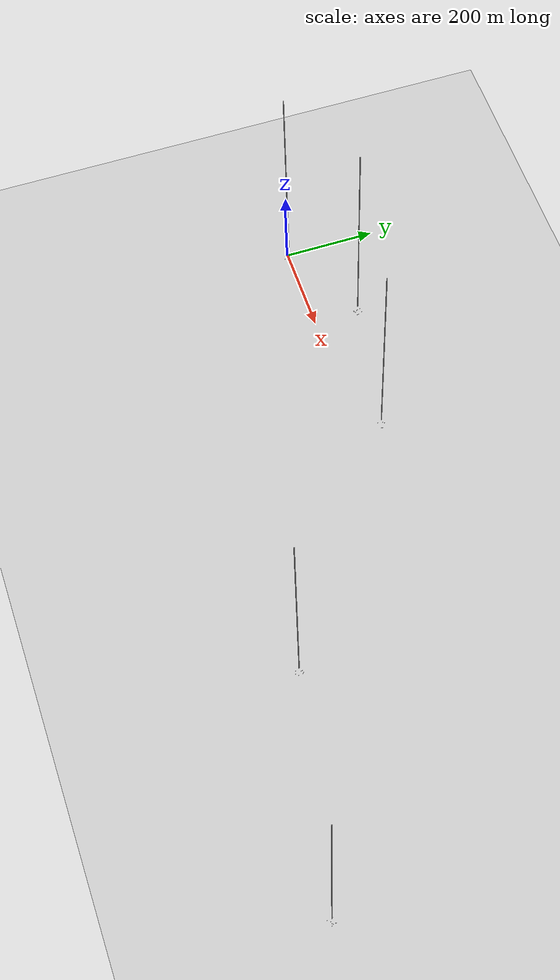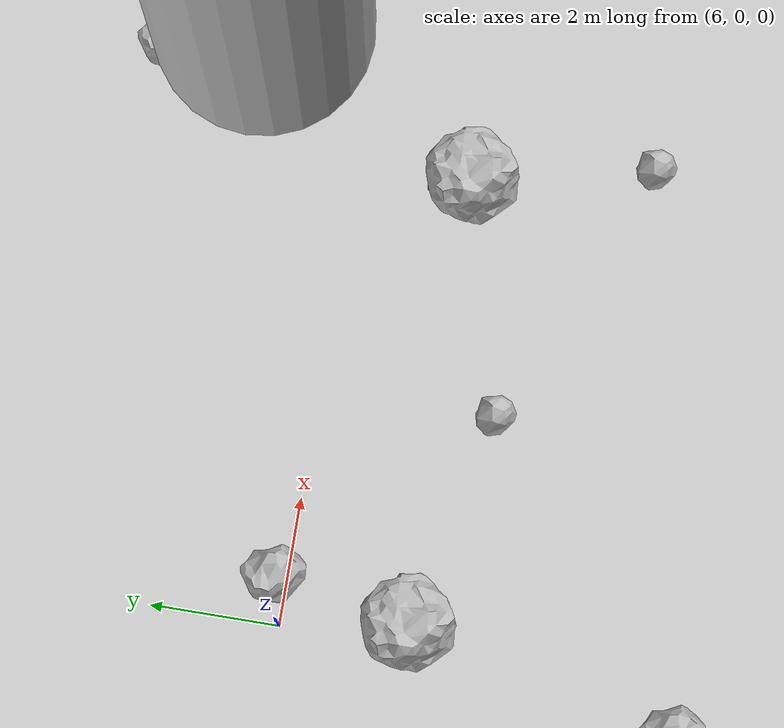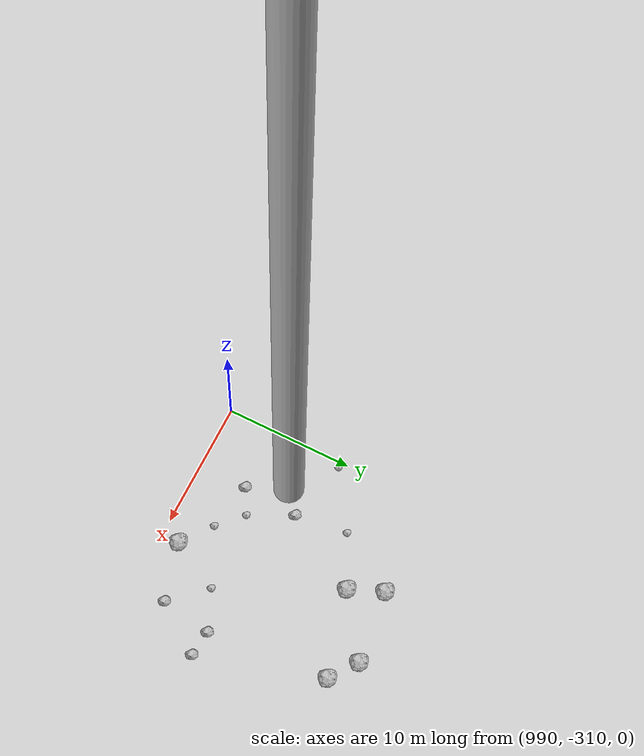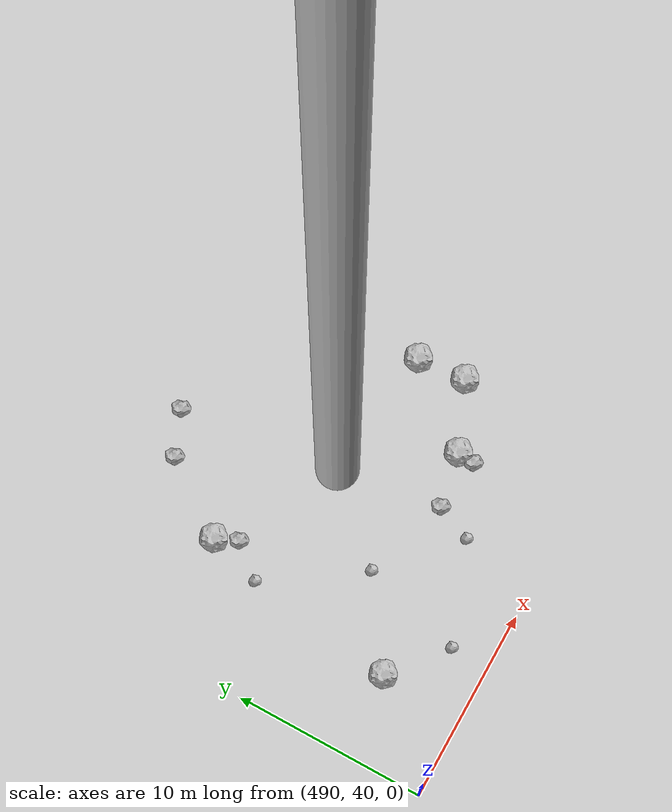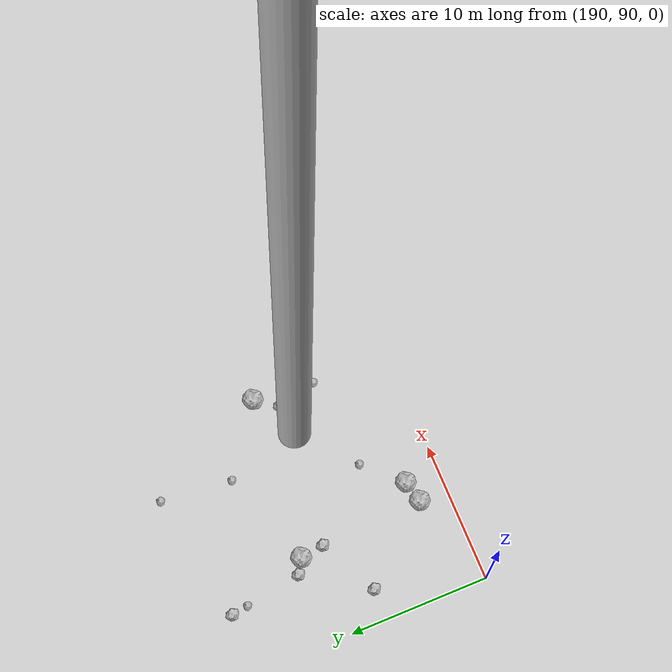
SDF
<?xml version="1.0" ?>
<sdf version="1.6">
  <world name="default">

    <include>
      <uri>model://custom_ground</uri>
    </include>

    <include>
      <uri>model://sun</uri>
    </include>

    <spherical_coordinates>
      <surface_model>EARTH_WGS84</surface_model>
      <latitude_deg>38.161479</latitude_deg>
      <longitude_deg>-122.454630</longitude_deg>
      <elevation>488.0</elevation>
      <heading_deg>90</heading_deg>
    </spherical_coordinates>

    <model name="rock1_0_0">
      <include>
        <uri>model://rock1</uri>
        <pose>6.378954680673143 -1.9242016777809479 0.5 0 0 0</pose>
      </include>
    </model>
    <model name="rock1_0_1">
      <include>
        <uri>model://rock1</uri>
        <pose>15.589041659439957 2.794380600290074 0.5 0 0 0</pose>
      </include>
    </model>
    <model name="rock1_0_2">
      <include>
        <uri>model://rock1</uri>
        <pose>13.354420805541631 -1.7660493267336008 0.5 0 0 0</pose>
      </include>
    </model>
    <model name="rock1_0_3">
      <include>
        <uri>model://rock1</uri>
        <pose>17.32283652993798 -1.3338000745133165 0.5 0 0 0</pose>
      </include>
    </model>
    <model name="rock1_0_4">
      <include>
        <uri>model://rock1</uri>
        <pose>6.980403882014445 8.118740719220241 0.5 0 0 0</pose>
      </include>
    </model>
    <model name="rock2_0_0">
      <include>
        <uri>model://rock2</uri>
        <pose>5.371072108476705 -6.121147035690672 0.3 0 0 0</pose>
      </include>
    </model>
    <model name="rock2_0_1">
      <include>
        <uri>model://rock2</uri>
        <pose>8.134404786920921 -8.991303453626136 0.3 0 0 0</pose>
      </include>
    </model>
    <model name="rock2_0_2">
      <include>
        <uri>model://rock2</uri>
        <pose>6.776627264823107 0.2251390261857189 0.3 0 0 0</pose>
      </include>
    </model>
    <model name="rock2_0_3">
      <include>
        <uri>model://rock2</uri>
        <pose>14.738135830108003 3.2366891755927245 0.3 0 0 0</pose>
      </include>
    </model>
    <model name="rock2_0_4">
      <include>
        <uri>model://rock2</uri>
        <pose>4.139170111905961 -6.455221484281671 0.3 0 0 0</pose>
      </include>
    </model>
    <model name="rock3_0_0">
      <include>
        <uri>model://rock3</uri>
        <pose>13.938119356794417 -4.581868992645754 0.2 0 0 0</pose>
      </include>
    </model>
    <model name="rock3_0_1">
      <include>
        <uri>model://rock3</uri>
        <pose>13.242922203519228 -1.399643811831801 0.2 0 0 0</pose>
      </include>
    </model>
    <model name="rock3_0_2">
      <include>
        <uri>model://rock3</uri>
        <pose>9.721767039546448 -2.735016011212248 0.2 0 0 0</pose>
      </include>
    </model>
    <model name="rock3_0_3">
      <include>
        <uri>model://rock3</uri>
        <pose>17.335190420348265 3.0132792781147195 0.2 0 0 0</pose>
      </include>
    </model>
    <model name="rock3_0_4">
      <include>
        <uri>model://rock3</uri>
        <pose>8.744611565919122 9.26963979300006 0.2 0 0 0</pose>
      </include>
    </model>
    <model name="rock1_1_0">
      <include>
        <uri>model://rock1</uri>
        <pose>196.18336221533622 101.19499239892446 0.5 0 0 0</pose>
      </include>
    </model>
    <model name="rock1_1_1">
      <include>
        <uri>model://rock1</uri>
        <pose>209.2479640414771 96.73098953637452 0.5 0 0 0</pose>
      </include>
    </model>
    <model name="rock1_1_2">
      <include>
        <uri>model://rock1</uri>
        <pose>196.70986054931507 92.10407982899676 0.5 0 0 0</pose>
      </include>
    </model>
    <model name="rock1_1_3">
      <include>
        <uri>model://rock1</uri>
        <pose>198.27617774538254 92.47825165707162 0.5 0 0 0</pose>
      </include>
    </model>
    <model name="rock1_1_4">
      <include>
        <uri>model://rock1</uri>
        <pose>207.82520161229064 100.00122579503167 0.5 0 0 0</pose>
      </include>
    </model>
    <model name="rock2_1_0">
      <include>
        <uri>model://rock2</uri>
        <pose>194.34862444688048 107.03898124360596 0.3 0 0 0</pose>
      </include>
    </model>
    <model name="rock2_1_1">
      <include>
        <uri>model://rock2</uri>
        <pose>206.71202858405252 98.40794780541145 0.3 0 0 0</pose>
      </include>
    </model>
    <model name="rock2_1_2">
      <include>
        <uri>model://rock2</uri>
        <pose>196.4097300630723 99.48805874835982 0.3 0 0 0</pose>
      </include>
    </model>
    <model name="rock2_1_3">
      <include>
        <uri>model://rock2</uri>
        <pose>192.2381955743395 97.41539516327832 0.3 0 0 0</pose>
      </include>
    </model>
    <model name="rock2_1_4">
      <include>
        <uri>model://rock2</uri>
        <pose>195.1655385184062 101.81661137601024 0.3 0 0 0</pose>
      </include>
    </model>
    <model name="rock3_1_0">
      <include>
        <uri>model://rock3</uri>
        <pose>203.5524477987249 108.61341022265128 0.2 0 0 0</pose>
      </include>
    </model>
    <model name="rock3_1_1">
      <include>
        <uri>model://rock3</uri>
        <pose>207.35013920670752 95.57030839043348 0.2 0 0 0</pose>
      </include>
    </model>
    <model name="rock3_1_2">
      <include>
        <uri>model://rock3</uri>
        <pose>194.50119460270042 105.82472127814543 0.2 0 0 0</pose>
      </include>
    </model>
    <model name="rock3_1_3">
      <include>
        <uri>model://rock3</uri>
        <pose>200.6733389937695 94.89106653750768 0.2 0 0 0</pose>
      </include>
    </model>
    <model name="rock3_1_4">
      <include>
        <uri>model://rock3</uri>
        <pose>203.0355756056484 103.50141173437655 0.2 0 0 0</pose>
      </include>
    </model>
    <model name="rock1_2_0">
      <include>
        <uri>model://rock1</uri>
        <pose>494.4018904840111 44.38317528238919 0.5 0 0 0</pose>
      </include>
    </model>
    <model name="rock1_2_1">
      <include>
        <uri>model://rock1</uri>
        <pose>505.8212190526899 46.37876016652588 0.5 0 0 0</pose>
      </include>
    </model>
    <model name="rock1_2_2">
      <include>
        <uri>model://rock1</uri>
        <pose>509.1903387629694 47.836913055460045 0.5 0 0 0</pose>
      </include>
    </model>
    <model name="rock1_2_3">
      <include>
        <uri>model://rock1</uri>
        <pose>496.30894065907216 54.91447733955411 0.5 0 0 0</pose>
      </include>
    </model>
    <model name="rock1_2_4">
      <include>
        <uri>model://rock1</uri>
        <pose>509.0090970044327 50.35723480190369 0.5 0 0 0</pose>
      </include>
    </model>
    <model name="rock2_2_0">
      <include>
        <uri>model://rock2</uri>
        <pose>505.7212744749377 45.51430022748227 0.3 0 0 0</pose>
      </include>
    </model>
    <model name="rock2_2_1">
      <include>
        <uri>model://rock2</uri>
        <pose>503.03394911148587 45.87807207148879 0.3 0 0 0</pose>
      </include>
    </model>
    <model name="rock2_2_2">
      <include>
        <uri>model://rock2</uri>
        <pose>501.1614485872178 59.46813877274989 0.3 0 0 0</pose>
      </include>
    </model>
    <model name="rock2_2_3">
      <include>
        <uri>model://rock2</uri>
        <pose>496.78611863288376 53.79521649677086 0.3 0 0 0</pose>
      </include>
    </model>
    <model name="rock2_2_4">
      <include>
        <uri>model://rock2</uri>
        <pose>498.91866459745233 58.592157329392045 0.3 0 0 0</pose>
      </include>
    </model>
    <model name="rock3_2_0">
      <include>
        <uri>model://rock3</uri>
        <pose>505.08852640812324 53.74514524228472 0.2 0 0 0</pose>
      </include>
    </model>
    <model name="rock3_2_1">
      <include>
        <uri>model://rock3</uri>
        <pose>495.38975476816734 52.11098504581135 0.2 0 0 0</pose>
      </include>
    </model>
    <model name="rock3_2_2">
      <include>
        <uri>model://rock3</uri>
        <pose>498.5990294490755 47.325097524820684 0.2 0 0 0</pose>
      </include>
    </model>
    <model name="rock3_2_3">
      <include>
        <uri>model://rock3</uri>
        <pose>502.2260493930436 43.97081327185897 0.2 0 0 0</pose>
      </include>
    </model>
    <model name="rock3_2_4">
      <include>
        <uri>model://rock3</uri>
        <pose>497.1418740614531 42.041874412822494 0.2 0 0 0</pose>
      </include>
    </model>
    <model name="rock1_3_0">
      <include>
        <uri>model://rock1</uri>
        <pose>1005.6546784650743 -293.99234599181545 0.5 0 0 0</pose>
      </include>
    </model>
    <model name="rock1_3_1">
      <include>
        <uri>model://rock1</uri>
        <pose>1001.3503927966761 -308.5841307185093 0.5 0 0 0</pose>
      </include>
    </model>
    <model name="rock1_3_2">
      <include>
        <uri>model://rock1</uri>
        <pose>1003.5441078188838 -292.45967133096616 0.5 0 0 0</pose>
      </include>
    </model>
    <model name="rock1_3_3">
      <include>
        <uri>model://rock1</uri>
        <pose>998.955424382743 -295.7178321265662 0.5 0 0 0</pose>
      </include>
    </model>
    <model name="rock1_3_4">
      <include>
        <uri>model://rock1</uri>
        <pose>997.835986039782 -293.0989882252193 0.5 0 0 0</pose>
      </include>
    </model>
    <model name="rock2_3_0">
      <include>
        <uri>model://rock2</uri>
        <pose>995.0947036023367 -306.1249958814307 0.3 0 0 0</pose>
      </include>
    </model>
    <model name="rock2_3_1">
      <include>
        <uri>model://rock2</uri>
        <pose>1005.7870418112253 -307.3608235187877 0.3 0 0 0</pose>
      </include>
    </model>
    <model name="rock2_3_2">
      <include>
        <uri>model://rock2</uri>
        <pose>1008.4768364284014 -303.64500690649874 0.3 0 0 0</pose>
      </include>
    </model>
    <model name="rock2_3_3">
      <include>
        <uri>model://rock2</uri>
        <pose>1006.4491036253986 -303.42161292424623 0.3 0 0 0</pose>
      </include>
    </model>
    <model name="rock2_3_4">
      <include>
        <uri>model://rock2</uri>
        <pose>995.3959738897877 -301.7469278732909 0.3 0 0 0</pose>
      </include>
    </model>
    <model name="rock3_3_0">
      <include>
        <uri>model://rock3</uri>
        <pose>1003.3086474862332 -304.7697821297873 0.2 0 0 0</pose>
      </include>
    </model>
    <model name="rock3_3_1">
      <include>
        <uri>model://rock3</uri>
        <pose>990.4447080143935 -300.57534258485146 0.2 0 0 0</pose>
      </include>
    </model>
    <model name="rock3_3_2">
      <include>
        <uri>model://rock3</uri>
        <pose>998.8778790746134 -306.8387081365237 0.2 0 0 0</pose>
      </include>
    </model>
    <model name="rock3_3_3">
      <include>
        <uri>model://rock3</uri>
        <pose>997.0245105222215 -305.07443813757726 0.2 0 0 0</pose>
      </include>
    </model>
    <model name="rock3_3_4">
      <include>
        <uri>model://rock3</uri>
        <pose>994.8634777142684 -297.67113216667855 0.2 0 0 0</pose>
      </include>
    </model>
    <model name="rock1_4_0">
      <include>
        <uri>model://rock1</uri>
        <pose>1505.4599481128698 -394.08481981076307 0.5 0 0 0</pose>
      </include>
    </model>
    <model name="rock1_4_1">
      <include>
        <uri>model://rock1</uri>
        <pose>1508.7621295087113 -402.86436680146244 0.5 0 0 0</pose>
      </include>
    </model>
    <model name="rock1_4_2">
      <include>
        <uri>model://rock1</uri>
        <pose>1503.642855183475 -401.77424197758273 0.5 0 0 0</pose>
      </include>
    </model>
    <model name="rock1_4_3">
      <include>
        <uri>model://rock1</uri>
        <pose>1493.67316144122 -396.3529529245179 0.5 0 0 0</pose>
      </include>
    </model>
    <model name="rock1_4_4">
      <include>
        <uri>model://rock1</uri>
        <pose>1495.4012919893987 -408.1500019239401 0.5 0 0 0</pose>
      </include>
    </model>
    <model name="rock2_4_0">
      <include>
        <uri>model://rock2</uri>
        <pose>1495.869677226357 -394.08273658909457 0.3 0 0 0</pose>
      </include>
    </model>
    <model name="rock2_4_1">
      <include>
        <uri>model://rock2</uri>
        <pose>1499.721426498809 -402.64642055796844 0.3 0 0 0</pose>
      </include>
    </model>
    <model name="rock2_4_2">
      <include>
        <uri>model://rock2</uri>
        <pose>1499.518689182622 -395.34795372507443 0.3 0 0 0</pose>
      </include>
    </model>
    <model name="rock2_4_3">
      <include>
        <uri>model://rock2</uri>
        <pose>1505.9901262442265 -399.7744767242807 0.3 0 0 0</pose>
      </include>
    </model>
    <model name="rock2_4_4">
      <include>
        <uri>model://rock2</uri>
        <pose>1506.4605854824995 -398.03153124295477 0.3 0 0 0</pose>
      </include>
    </model>
    <model name="rock3_4_0">
      <include>
        <uri>model://rock3</uri>
        <pose>1506.5053218312842 -393.3987129727406 0.2 0 0 0</pose>
      </include>
    </model>
    <model name="rock3_4_1">
      <include>
        <uri>model://rock3</uri>
        <pose>1495.439604502827 -408.70584229560836 0.2 0 0 0</pose>
      </include>
    </model>
    <model name="rock3_4_2">
      <include>
        <uri>model://rock3</uri>
        <pose>1491.2237032693724 -401.10051292272294 0.2 0 0 0</pose>
      </include>
    </model>
    <model name="rock3_4_3">
      <include>
        <uri>model://rock3</uri>
        <pose>1496.615066917056 -396.84017788648936 0.2 0 0 0</pose>
      </include>
    </model>
    <model name="rock3_4_4">
      <include>
        <uri>model://rock3</uri>
        <pose>1494.7129953268175 -392.9762072453152 0.2 0 0 0</pose>
      </include>
    </model>

    <model name="cylinder_1">
      <static>true</static>
      <link name="link">
        <visual name="visual">
          <geometry>
            <cylinder>
              <radius>1</radius>
              <length>500</length>
            </cylinder>
          </geometry>
        </visual>
      </link>
      <pose>10 0 270 0 0 0</pose>
    </model>

    <model name="cylinder_2">
      <static>true</static>
      <link name="link">
        <visual name="visual">
          <geometry>
            <cylinder>
              <radius>1</radius>
              <length>500</length>
            </cylinder>
          </geometry>
        </visual>
      </link>
      <pose>200 100 270 0 0 0</pose>
    </model>

    <model name="cylinder_3">
      <static>true</static>
      <link name="link">
        <visual name="visual">
          <geometry>
            <cylinder>
              <radius>1</radius>
              <length>500</length>
            </cylinder>
          </geometry>
        </visual>
      </link>
      <pose>500 50 270 0 0 0</pose>
    </model>

    <model name="cylinder_4">
      <static>true</static>
      <link name="link">
        <visual name="visual">
          <geometry>
            <cylinder>
              <radius>1</radius>
              <length>500</length>
            </cylinder>
          </geometry>
        </visual>
      </link>
      <pose>1000 -300 270 0 0 0</pose>
    </model>

    <model name="cylinder_5">
      <static>true</static>
      <link name="link">
        <visual name="visual">
          <geometry>
            <cylinder>
              <radius>1</radius>
              <length>500</length>
            </cylinder>
          </geometry>
        </visual>
      </link>
      <pose>1500 -400 270 0 0 0</pose>
    </model>

  </world>
</sdf>

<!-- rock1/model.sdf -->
<sdf version="1.6">
  <model name="rock1">
    <static>true</static> <!-- Set to true if the model should not move -->
    <pose>0 0 0 0 0 0</pose>

    <!--z offset is 0.5 for full scale-->

    <link name="link">
      <collision name="rock1_collision">
        <geometry>
          <mesh>
            <uri>model://meshes/rock1.dae</uri>
          </mesh>
        </geometry>
      </collision>
      <visual name="rock1_visual">
        <geometry>
          <mesh>
            <uri>model://meshes/rock1.dae</uri>
          </mesh>
        </geometry>
        <material>
          <script>
            <uri>model://materials/scripts/sand_pebbles.material</uri>
            <name>custom_ground/Image</name>
          </script>
        </material>
      </visual>
    </link>
  </model>
</sdf>

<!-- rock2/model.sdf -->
<sdf version="1.6">
  <model name="rock2">
    <static>true</static> <!-- Set to true if the model should not move -->
    <pose>0 0 0 0 0 0</pose>

    <!--z offset is 0.3 for full scale-->

    <link name="link">
      <collision name="rock2_collision">
        <geometry>
          <mesh>
            <uri>model://meshes/rock2.dae</uri>
          </mesh>
        </geometry>
      </collision>
      <visual name="rock2_visual">
        <geometry>
          <mesh>
            <uri>model://meshes/rock2.dae</uri>
          </mesh>
        </geometry>
        <material>
          <script>
            <uri>model://materials/scripts/sand_pebbles.material</uri>
            <name>custom_ground/Image</name>
          </script>
        </material>
      </visual>
    </link>
  </model>
</sdf>

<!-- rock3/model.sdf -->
<sdf version="1.6">
  <model name="rock3">
    <static>true</static> <!-- Set to true if the model should not move -->
    <pose>0 0 0 0 0 0</pose>

    <!--z offset is 0.2 for full scale-->

    <link name="link">
      <collision name="rock3_collision">
        <geometry>
          <mesh>
            <uri>model://meshes/rock3.dae</uri>
          </mesh>
        </geometry>
      </collision>
      <visual name="rock3_visual">
        <geometry>
          <mesh>
            <uri>model://meshes/rock3.dae</uri>
          </mesh>
        </geometry>
        <material>
          <script>
            <uri>model://materials/scripts/sand_pebbles.material</uri>
            <name>custom_ground/Image</name>
          </script>
        </material>
      </visual>
    </link>
  </model>
</sdf>

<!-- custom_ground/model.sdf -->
<sdf version="1.6">
  <model name="custom_ground">
    <static>true</static> <!-- Ground is static and immovable -->
    <link name="ground_link">
      <pose>240 0 0 0 0 0</pose> <!-- Position and orientation relative to the world -->
      <!-- Visual Representation -->
      <visual name="ground_visual">
        <geometry>
          <plane>
            <normal>0 0 1</normal> <!-- Upward facing plane -->
            <size>500 500</size> <!-- Size of the plane -->
          </plane>
        </geometry>
        <material>
          <script>
            <uri>model://materials/scripts/sand_pebbles.material</uri>
            <name>custom_ground/Image</name>
          </script>
        </material>
      </visual>

      <!-- Collision Representation -->
      <collision name="ground_collision">
        <geometry>
          <plane>
            <normal>0 0 1</normal>
            <size>100 100</size>
          </plane>
        </geometry>
      </collision>

    </link>
  </model>
</sdf>
